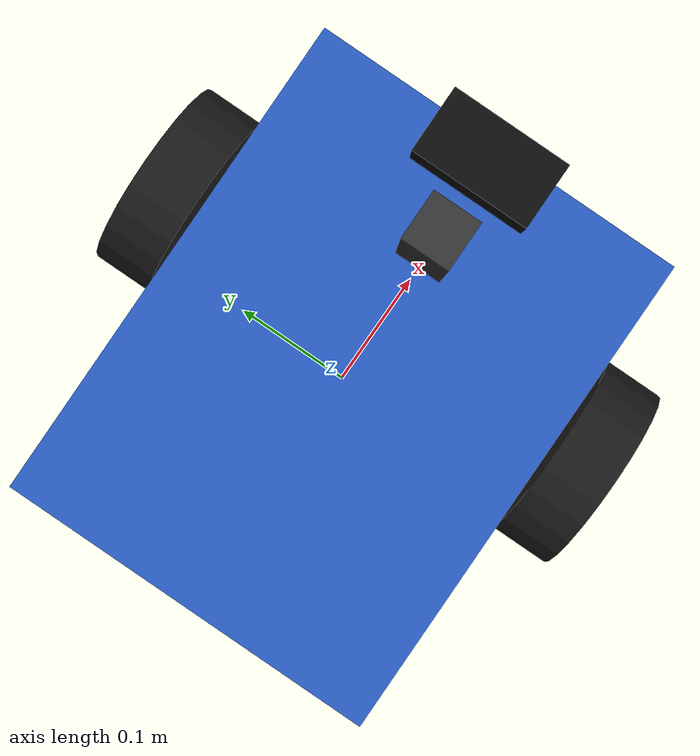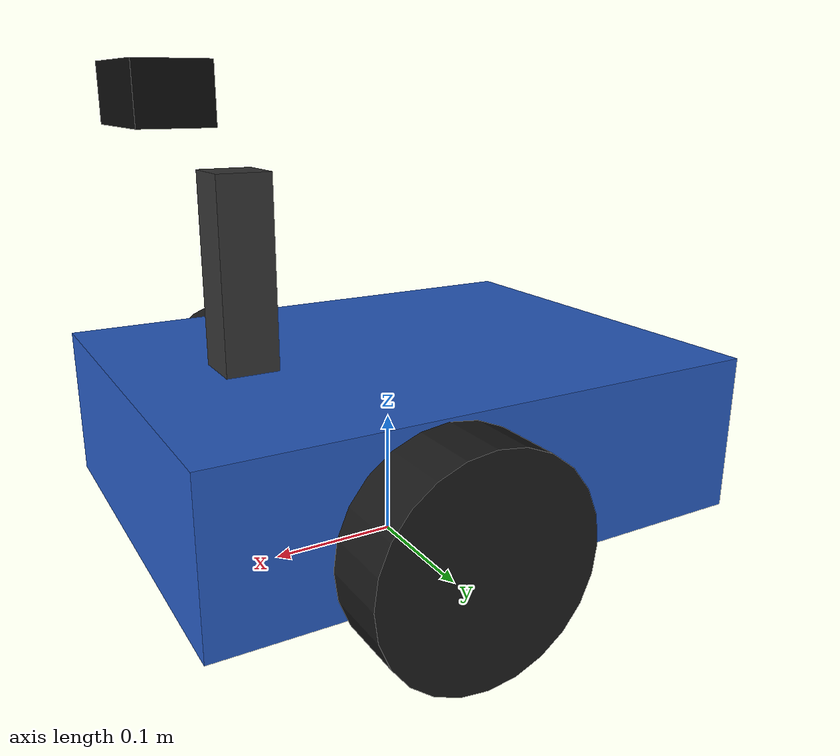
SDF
<?xml version="1.0"?>
<sdf version="1.9">
  <model name="omnivla_robot">
    <link name="base_link">
      <pose>0 0 0.1 0 0 0</pose>
      <inertial>
        <mass>8.0</mass>
        <inertia>
          <ixx>0.0779</ixx><ixy>0</ixy><ixz>0</ixz>
          <iyy>0.1272</iyy><iyz>0</iyz>
          <izz>0.1859</izz>
        </inertia>
      </inertial>
      <collision name="collision">
        <geometry><box><size>0.42 0.32 0.12</size></box></geometry>
      </collision>
      <visual name="visual">
        <geometry><box><size>0.42 0.32 0.12</size></box></geometry>
        <material>
          <ambient>0.15 0.35 0.75 1</ambient>
          <diffuse>0.15 0.35 0.75 1</diffuse>
          <specular>0.3 0.3 0.3 1</specular>
        </material>
      </visual>
      <visual name="mast">
        <pose>0.12 0 0.13 0 0 0</pose>
        <geometry><box><size>0.04 0.04 0.14</size></box></geometry>
        <material>
          <ambient>0.2 0.2 0.2 1</ambient>
          <diffuse>0.2 0.2 0.2 1</diffuse>
        </material>
      </visual>
    </link>

    <link name="camera_link">
      <pose>0.17 0 0.35 0 0 0</pose>
      <inertial>
        <mass>0.05</mass>
        <inertia>
          <ixx>1e-5</ixx><ixy>0</ixy><ixz>0</ixz>
          <iyy>1e-5</iyy><iyz>0</iyz>
          <izz>1e-5</izz>
        </inertia>
      </inertial>
      <visual name="visual">
        <geometry><box><size>0.05 0.09 0.04</size></box></geometry>
        <material>
          <ambient>0.05 0.05 0.05 1</ambient>
          <diffuse>0.05 0.05 0.05 1</diffuse>
        </material>
      </visual>
      <sensor name="front_camera" type="camera">
        <always_on>true</always_on>
        <update_rate>15</update_rate>
        <visualize>false</visualize>
        <topic>/camera/image_raw</topic>
        <camera name="front">
          <horizontal_fov>1.75</horizontal_fov>
          <image>
            <width>640</width>
            <height>480</height>
            <format>R8G8B8</format>
          </image>
          <clip>
            <near>0.05</near>
            <far>120</far>
          </clip>
        </camera>
      </sensor>
    </link>
    <joint name="camera_joint" type="fixed">
      <parent>base_link</parent>
      <child>camera_link</child>
    </joint>

    <link name="left_wheel">
      <pose>0.05 0.19 0.08 -1.5707 0 0</pose>
      <inertial>
        <mass>0.5</mass>
        <inertia>
          <ixx>0.000904</ixx><ixy>0</ixy><ixz>0</ixz>
          <iyy>0.000904</iyy><iyz>0</iyz>
          <izz>0.0016</izz>
        </inertia>
      </inertial>
      <collision name="collision">
        <geometry><cylinder><radius>0.08</radius><length>0.05</length></cylinder></geometry>
        <surface><friction><ode><mu>1.0</mu><mu2>1.0</mu2></ode></friction></surface>
      </collision>
      <visual name="visual">
        <geometry><cylinder><radius>0.08</radius><length>0.05</length></cylinder></geometry>
        <material>
          <ambient>0.1 0.1 0.1 1</ambient>
          <diffuse>0.1 0.1 0.1 1</diffuse>
        </material>
      </visual>
    </link>

    <link name="right_wheel">
      <pose>0.05 -0.19 0.08 -1.5707 0 0</pose>
      <inertial>
        <mass>0.5</mass>
        <inertia>
          <ixx>0.000904</ixx><ixy>0</ixy><ixz>0</ixz>
          <iyy>0.000904</iyy><iyz>0</iyz>
          <izz>0.0016</izz>
        </inertia>
      </inertial>
      <collision name="collision">
        <geometry><cylinder><radius>0.08</radius><length>0.05</length></cylinder></geometry>
        <surface><friction><ode><mu>1.0</mu><mu2>1.0</mu2></ode></friction></surface>
      </collision>
      <visual name="visual">
        <geometry><cylinder><radius>0.08</radius><length>0.05</length></cylinder></geometry>
        <material>
          <ambient>0.1 0.1 0.1 1</ambient>
          <diffuse>0.1 0.1 0.1 1</diffuse>
        </material>
      </visual>
    </link>

    <link name="caster">
      <pose>-0.15 0 0.04 0 0 0</pose>
      <inertial>
        <mass>0.2</mass>
        <inertia>
          <ixx>0.000128</ixx><ixy>0</ixy><ixz>0</ixz>
          <iyy>0.000128</iyy><iyz>0</iyz>
          <izz>0.000128</izz>
        </inertia>
      </inertial>
      <collision name="collision">
        <geometry><sphere><radius>0.04</radius></sphere></geometry>
        <surface><friction><ode><mu>0.01</mu><mu2>0.01</mu2></ode></friction></surface>
      </collision>
      <visual name="visual">
        <geometry><sphere><radius>0.04</radius></sphere></geometry>
        <material>
          <ambient>0.3 0.3 0.3 1</ambient>
          <diffuse>0.3 0.3 0.3 1</diffuse>
        </material>
      </visual>
    </link>

    <joint name="left_wheel_joint" type="revolute">
      <parent>base_link</parent>
      <child>left_wheel</child>
      <axis>
        <xyz>0 0 1</xyz>
        <limit><lower>-1.79769e+308</lower><upper>1.79769e+308</upper></limit>
      </axis>
    </joint>
    <joint name="right_wheel_joint" type="revolute">
      <parent>base_link</parent>
      <child>right_wheel</child>
      <axis>
        <xyz>0 0 1</xyz>
        <limit><lower>-1.79769e+308</lower><upper>1.79769e+308</upper></limit>
      </axis>
    </joint>
    <joint name="caster_joint" type="ball">
      <parent>base_link</parent>
      <child>caster</child>
    </joint>

    <plugin filename="gz-sim-diff-drive-system" name="gz::sim::systems::DiffDrive">
      <left_joint>left_wheel_joint</left_joint>
      <right_joint>right_wheel_joint</right_joint>
      <wheel_separation>0.38</wheel_separation>
      <wheel_radius>0.08</wheel_radius>
      <topic>/cmd_vel</topic>
      <odom_topic>/wheel_odom</odom_topic>
      <tf_topic>/wheel_tf</tf_topic>
      <frame_id>odom</frame_id>
      <child_frame_id>base_link</child_frame_id>
      <odom_publish_frequency>30</odom_publish_frequency>
      <max_linear_acceleration>1.0</max_linear_acceleration>
      <min_linear_acceleration>-1.0</min_linear_acceleration>
      <max_angular_acceleration>3.0</max_angular_acceleration>
      <min_angular_acceleration>-3.0</min_angular_acceleration>
      <max_linear_velocity>0.8</max_linear_velocity>
      <min_linear_velocity>-0.8</min_linear_velocity>
      <max_angular_velocity>2.0</max_angular_velocity>
      <min_angular_velocity>-2.0</min_angular_velocity>
    </plugin>

    <!-- 真値 (ワールド座標) のオドメトリ. データのラベル・評価・ポーズゴールに使用 -->
    <plugin filename="gz-sim-odometry-publisher-system" name="gz::sim::systems::OdometryPublisher">
      <odom_frame>odom</odom_frame>
      <robot_base_frame>base_link</robot_base_frame>
      <odom_topic>/odom</odom_topic>
      <tf_topic>/tf</tf_topic>
      <odom_publish_frequency>50</odom_publish_frequency>
      <dimensions>2</dimensions>
    </plugin>

    <plugin filename="gz-sim-joint-state-publisher-system" name="gz::sim::systems::JointStatePublisher"/>
  </model>
</sdf>
